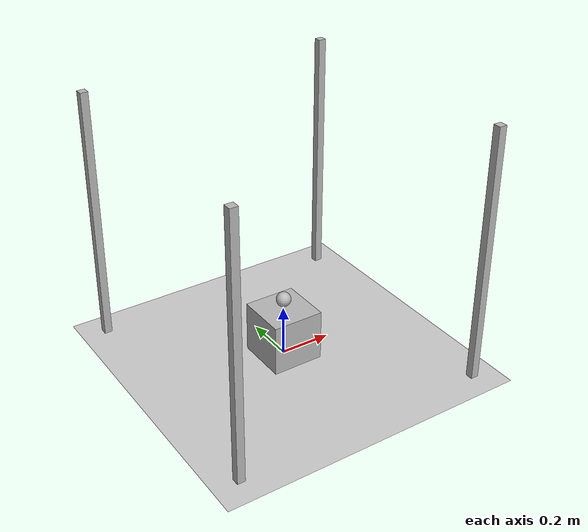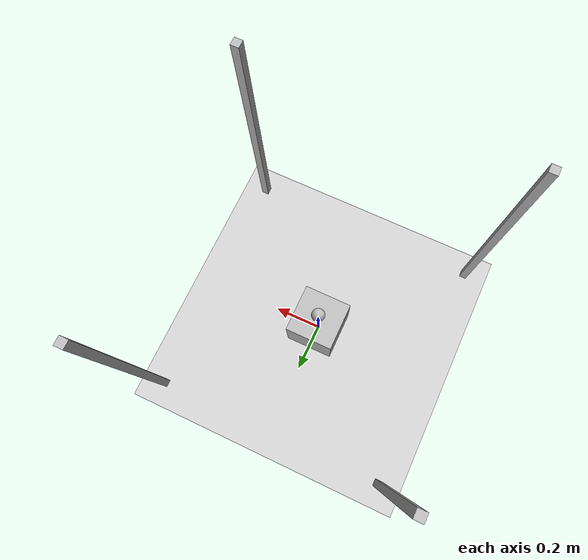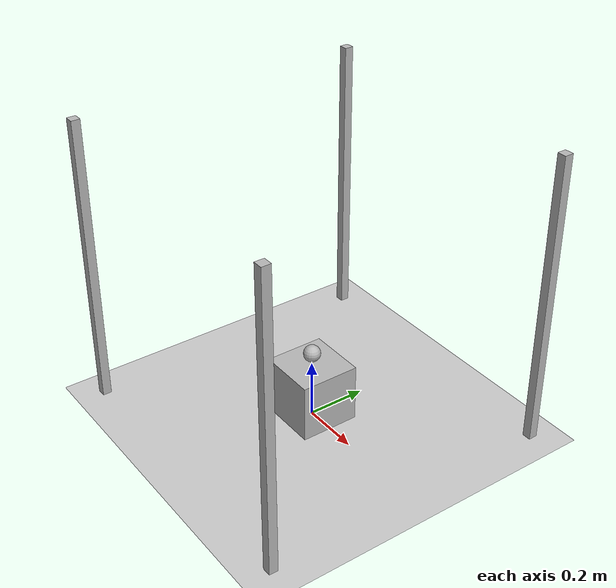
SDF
<?xml version="1.0" ?>
<sdf version="1.4">
  <world name="default">
    <scene>
      <ambient>0.2 0.2 0.2 1</ambient>
      <background>0.25 0.25 0.25 1</background>
      <shadows>false</shadows>
    </scene>
    <light type="directional" name="some_light">
      <diffuse>0.7 0.7 0.7 0</diffuse>
      <specular>1 1 1 0</specular>
      <direction>-1 -1 -1</direction>
    </light>

    <include>
      <uri>model://ground_plane</uri>
    </include>
    <include>
      <uri>model://sun</uri>
    </include>

    <model name="egg_base">
      <pose>0 0 0.1 0 0 0</pose>
      <static>true</static>
      <link name="egg_base_link">
        <inertial>
          <mass>1.0</mass>
          <inertia> <!-- inertias are tricky to compute -->
            <!-- http://gazebosim.org/tutorials?tut=inertia&cat=build_robot -->
            <ixx>0.083</ixx>       <!-- for a box: ixx = 0.083 * mass * (y*y + z*z) -->
            <ixy>0.0</ixy>         <!-- for a box: ixy = 0 -->
            <ixz>0.0</ixz>         <!-- for a box: ixz = 0 -->
            <iyy>0.083</iyy>       <!-- for a box: iyy = 0.083 * mass * (x*x + z*z) -->
            <iyz>0.0</iyz>         <!-- for a box: iyz = 0 -->
            <izz>0.083</izz>       <!-- for a box: izz = 0.083 * mass * (x*x + y*y) -->
          </inertia>
        </inertial>
        <collision name="collision">
          <geometry>
            <box>
              <size>0.2 0.2 0.2</size>
            </box>
          </geometry>
        </collision>
        <visual name="visual">
          <geometry>
            <box>
              <size>0.2 0.2 0.2</size>
            </box>
          </geometry>
        </visual>
      </link>
    </model>

    <model name="egg">
      <pose>0 0 0.24 0 0 0</pose>
      <link name="egg_linkk">
        <inertial>
          <mass>1.0</mass>
          <inertia> <!-- inertias are tricky to compute -->
            <!-- http://gazebosim.org/tutorials?tut=inertia&cat=build_robot -->
            <ixx>0.083</ixx>       <!-- for a box: ixx = 0.083 * mass * (y*y + z*z) -->
            <ixy>0.0</ixy>         <!-- for a box: ixy = 0 -->
            <ixz>0.0</ixz>         <!-- for a box: ixz = 0 -->
            <iyy>0.083</iyy>       <!-- for a box: iyy = 0.083 * mass * (x*x + z*z) -->
            <iyz>0.0</iyz>         <!-- for a box: iyz = 0 -->
            <izz>0.083</izz>       <!-- for a box: izz = 0.083 * mass * (x*x + y*y) -->
          </inertia>
        </inertial>
        <collision name="collision">
          <geometry>
            <sphere>
              <radius>0.0285</radius>
            </sphere>
          </geometry>
        </collision>
        <visual name="visual">
          <geometry>
            <sphere>
              <radius>0.0285</radius>
            </sphere>
          </geometry>
        </visual>
      </link>
    </model>

    <model name="case">
      <pose>0 0 0 0 0 0</pose>
      <static>true</static>
      <link name="case_link_1">
        <inertial>
          <pose>0.5 0.5 0.5 0 0 0</pose>
          <mass>1.0</mass>
          <inertia> <!-- inertias are tricky to compute -->
            <!-- http://gazebosim.org/tutorials?tut=inertia&cat=build_robot -->
            <ixx>0.083</ixx>       <!-- for a box: ixx = 0.083 * mass * (y*y + z*z) -->
            <ixy>0.0</ixy>         <!-- for a box: ixy = 0 -->
            <ixz>0.0</ixz>         <!-- for a box: ixz = 0 -->
            <iyy>0.083</iyy>       <!-- for a box: iyy = 0.083 * mass * (x*x + z*z) -->
            <iyz>0.0</iyz>         <!-- for a box: iyz = 0 -->
            <izz>0.083</izz>       <!-- for a box: izz = 0.083 * mass * (x*x + y*y) -->
          </inertia>
        </inertial>
        <collision name="collision">
          <pose>0.5 0.5 0.5 0 0 0</pose>
          <geometry>
            <box>
              <size>0.03 0.03 1.0</size>
            </box>
          </geometry>
        </collision>
        <visual name="visual">
          <pose>0.5 0.5 0.5 0 0 0</pose>
          <geometry>
            <box>
              <size>0.03 0.03 1.0</size>
            </box>
          </geometry>
        </visual>
      </link>
      <link name="case_link_2">
        <inertial>
          <pose>-0.5 0.5 0.5 0 0 0</pose>
          <mass>1.0</mass>
          <inertia> <!-- inertias are tricky to compute -->
            <!-- http://gazebosim.org/tutorials?tut=inertia&cat=build_robot -->
            <ixx>0.083</ixx>       <!-- for a box: ixx = 0.083 * mass * (y*y + z*z) -->
            <ixy>0.0</ixy>         <!-- for a box: ixy = 0 -->
            <ixz>0.0</ixz>         <!-- for a box: ixz = 0 -->
            <iyy>0.083</iyy>       <!-- for a box: iyy = 0.083 * mass * (x*x + z*z) -->
            <iyz>0.0</iyz>         <!-- for a box: iyz = 0 -->
            <izz>0.083</izz>       <!-- for a box: izz = 0.083 * mass * (x*x + y*y) -->
          </inertia>
        </inertial>
        <collision name="collision">
          <pose>-0.5 0.5 0.5 0 0 0</pose>
          <geometry>
            <box>
              <size>0.03 0.03 1.0</size>
            </box>
          </geometry>
        </collision>
        <visual name="visual">
          <pose>-0.5 0.5 0.5 0 0 0</pose>
          <geometry>
            <box>
              <size>0.03 0.03 1.0</size>
            </box>
          </geometry>
        </visual>
      </link>
      <link name="case_link_3">
        <inertial>
          <pose>-0.5 -0.5 0.5 0 0 0</pose>
          <mass>1.0</mass>
          <inertia> <!-- inertias are tricky to compute -->
            <!-- http://gazebosim.org/tutorials?tut=inertia&cat=build_robot -->
            <ixx>0.083</ixx>       <!-- for a box: ixx = 0.083 * mass * (y*y + z*z) -->
            <ixy>0.0</ixy>         <!-- for a box: ixy = 0 -->
            <ixz>0.0</ixz>         <!-- for a box: ixz = 0 -->
            <iyy>0.083</iyy>       <!-- for a box: iyy = 0.083 * mass * (x*x + z*z) -->
            <iyz>0.0</iyz>         <!-- for a box: iyz = 0 -->
            <izz>0.083</izz>       <!-- for a box: izz = 0.083 * mass * (x*x + y*y) -->
          </inertia>
        </inertial>
        <collision name="collision">
          <pose>-0.5 -0.5 0.5 0 0 0</pose>
          <geometry>
            <box>
              <size>0.03 0.03 1.0</size>
            </box>
          </geometry>
        </collision>
        <visual name="visual">
          <pose>-0.5 -0.5 0.5 0 0 0</pose>
          <geometry>
            <box>
              <size>0.03 0.03 1.0</size>
            </box>
          </geometry>
        </visual>
      </link>
      <link name="case_link_4">
        <inertial>
          <pose>0.5 -0.5 0.5 0 0 0</pose>
          <mass>1.0</mass>
          <inertia> <!-- inertias are tricky to compute -->
            <!-- http://gazebosim.org/tutorials?tut=inertia&cat=build_robot -->
            <ixx>0.083</ixx>       <!-- for a box: ixx = 0.083 * mass * (y*y + z*z) -->
            <ixy>0.0</ixy>         <!-- for a box: ixy = 0 -->
            <ixz>0.0</ixz>         <!-- for a box: ixz = 0 -->
            <iyy>0.083</iyy>       <!-- for a box: iyy = 0.083 * mass * (x*x + z*z) -->
            <iyz>0.0</iyz>         <!-- for a box: iyz = 0 -->
            <izz>0.083</izz>       <!-- for a box: izz = 0.083 * mass * (x*x + y*y) -->
          </inertia>
        </inertial>
        <collision name="collision">
          <pose>0.5 -0.5 0.5 0 0 0</pose>
          <geometry>
            <box>
              <size>0.03 0.03 1.0</size>
            </box>
          </geometry>
        </collision>
        <visual name="visual">
          <pose>0.5 -0.5 0.5 0 0 0</pose>
          <geometry>
            <box>
              <size>0.03 0.03 1.0</size>
            </box>
          </geometry>
        </visual>
      </link>
    </model>
  </world>
</sdf>
